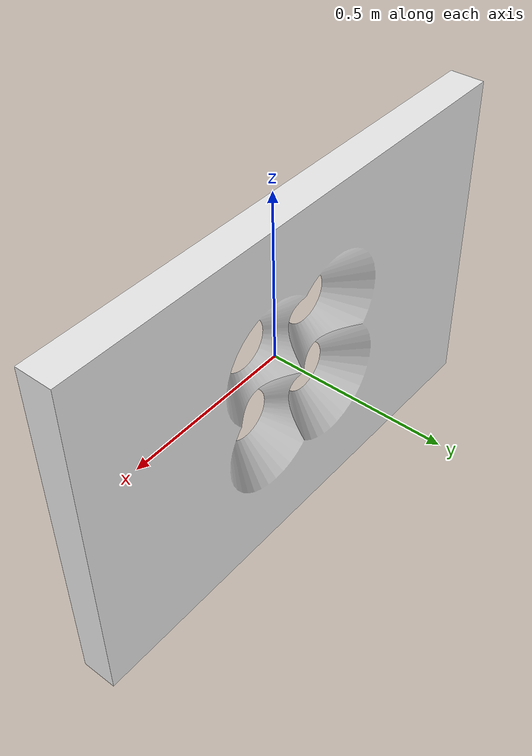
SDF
<?xml version="1.0" ?>
<sdf version="1.6">
<model name="domhof_board">
	<static>true</static>
	<pose>0 0 0 -1.5707963267949 0 0</pose>
	<link name="link">
		<inertial>
			<pose>-6.8291E-09 -0.048435 -1.48553095626307E-17 0 0 0</pose>
			<mass>133.58</mass>
			<inertia>
				<ixx>12.468</ixx>
				<ixy>4.0775E-08</ixy>
				<ixz>4.14710024966662E-17</ixz>
				<iyy>40.651</iyy>
				<iyz>-7.67593240127751E-16</iyz>
				<izz>28.406</izz>
			</inertia>
		</inertial>

		<collision name="collision">
			<geometry>
			  <mesh>
				<uri>model://domhof_board/meshes/domhof_board.STL</uri>
			  </mesh>
			</geometry>
		</collision>

		<visual name="visual">
			<geometry>
			  <mesh>
				<uri>model://domhof_board/meshes/domhof_board.STL</uri>
			  </mesh>
			</geometry>
			<material>
				<script>
					<uri>file://media/materials/scripts/gazebo.material</uri>
					<name>Gazebo/White</name>
				</script>
			</material>
		</visual>
    </link>
  </model>
</sdf>
